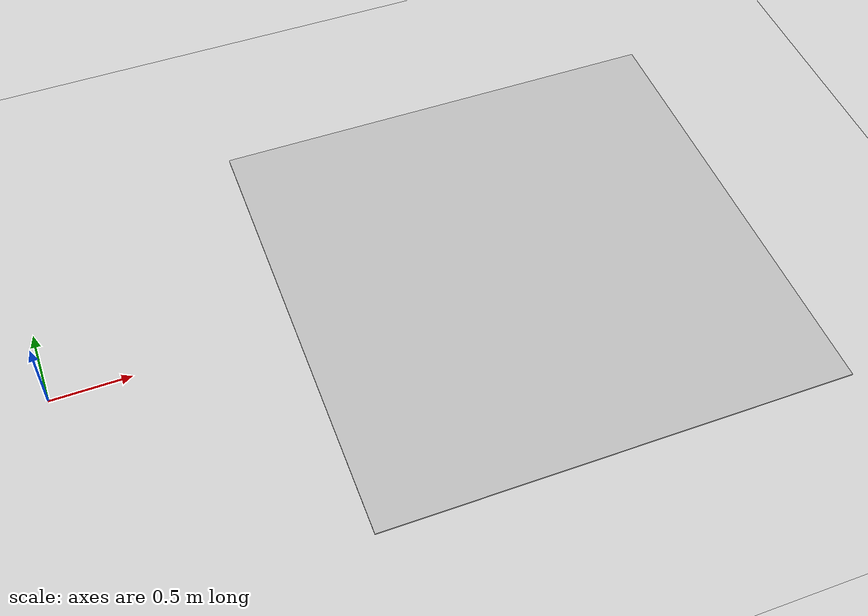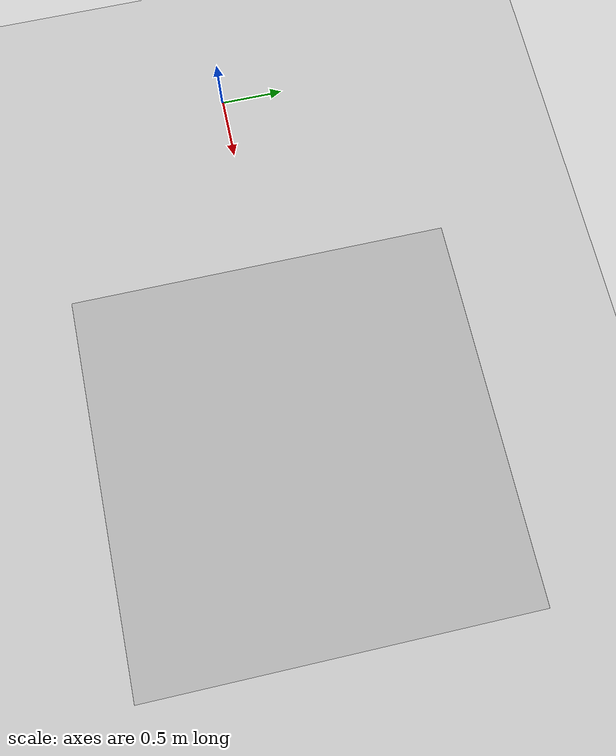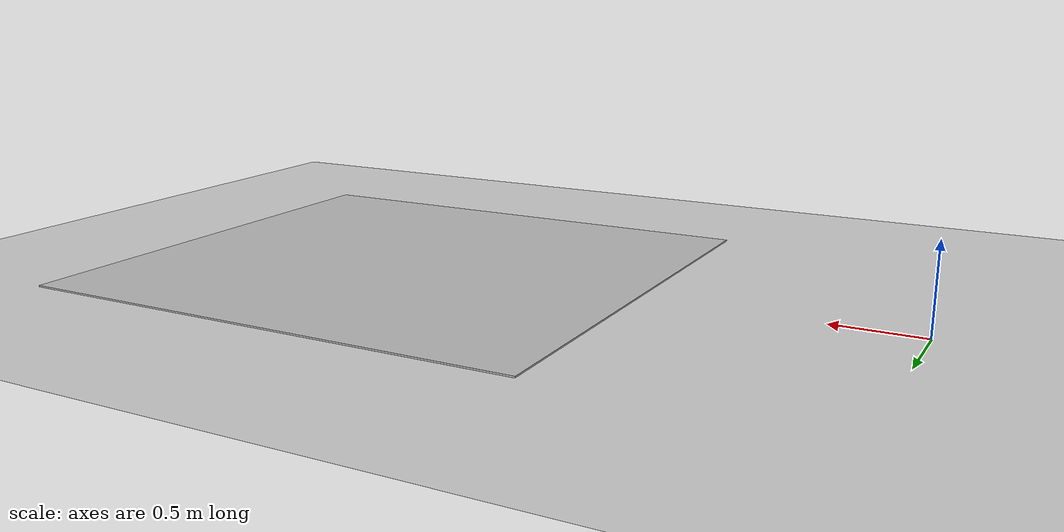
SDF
<sdf version="1.6">
 <world name="default">
  <model name="ground_plane">
   <static>1</static>
   <link name="link">
    <collision name="collision">
     <geometry><plane><normal>0 0 1</normal><size>100 100</size></plane></geometry>
     <surface><friction><ode><mu>100</mu><mu2>50</mu2></ode></friction></surface>
    </collision>
    <visual name="visual">
     <cast_shadows>0</cast_shadows>
     <geometry><plane><normal>0 0 1</normal><size>100 100</size></plane></geometry>
     <material>
      <script><uri>file://media/materials/scripts/gazebo.material</uri><name>Gazebo/Grey</name></script>
     </material>
    </visual>
   </link>
  </model>
  <light name="sun" type="directional">
   <pose>0 0 10 0 -0 0</pose>
   <diffuse>0.8 0.8 0.8 1</diffuse>
   <specular>0.2 0.2 0.2 1</specular>
   <attenuation>
    <range>1000</range>
    <constant>0.9</constant>
    <linear>0.01</linear>
    <quadratic>0.001</quadratic>
   </attenuation>
   <direction>-0.5 0.1 -0.9</direction>
  </light>
  <spherical_coordinates>
   <surface_model>EARTH_WGS84</surface_model>
   <latitude_deg>47.3667</latitude_deg>
   <longitude_deg>8.55</longitude_deg>
   <elevation>500</elevation>
   <heading_deg>0</heading_deg>
  </spherical_coordinates>
  <physics name="default_physics" default="0" type="ode">
   <ode>
    <solver>
     <type>quick</type>
     <iters>1000</iters>
     <sor>1.3</sor>
     <use_dynamic_moi_rescaling>0</use_dynamic_moi_rescaling>
    </solver>
    <constraints>
     <cfm>0</cfm>
     <erp>0.2</erp>
     <contact_max_correcting_vel>100</contact_max_correcting_vel>
     <contact_surface_layer>0.001</contact_surface_layer>
    </constraints>
   </ode>
   <max_step_size>0.01</max_step_size>
   <real_time_factor>1</real_time_factor>
   <real_time_update_rate>100</real_time_update_rate>
  </physics>
  <gravity>0 0 -9.8</gravity>
  <magnetic_field>6e-06 2.3e-05 -4.2e-05</magnetic_field>
  <atmosphere type="adiabatic"/>
  <scene><ambient>0.4 0.4 0.4 1</ambient><background>0.7 0.7 0.7 1</background><shadows>1</shadows></scene>
  <model name="gi_helipad">
   <link name="link">
    <inertial>
     <mass>10</mass>
     <inertia><ixx>0.1</ixx><ixy>0</ixy><ixz>0</ixz><iyy>0.1</iyy><iyz>0</iyz><izz>0.1</izz></inertia>
    </inertial>
    <collision name="collision_helipad"><geometry><box><size>2.7 2.7 0.01</size></box></geometry></collision>
    <visual name="visual_helipad">
     <geometry><box><size>3 3 0.009</size></box></geometry>
     <material>
      <script>
       <uri>model://gi_helipad/materials/scripts</uri>
       <uri>model://gi_helipad/materials/textures</uri>
       <name>Helipad/Diffuse</name>
      </script>
     </material>
    </visual>
   </link>
   <pose>3 -0 0.005 0 -0 0</pose>
  </model>
 </world>
</sdf>
